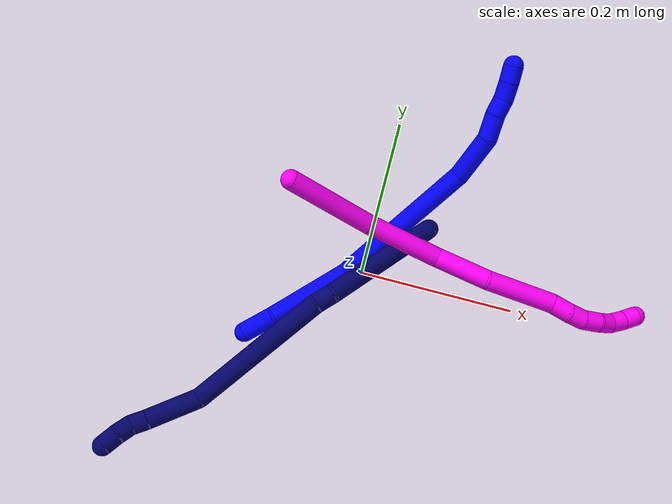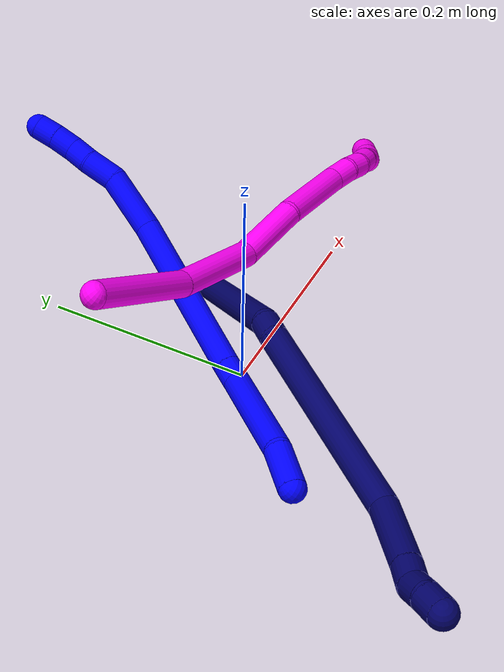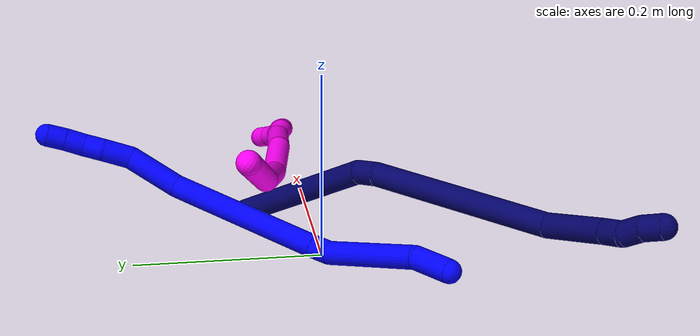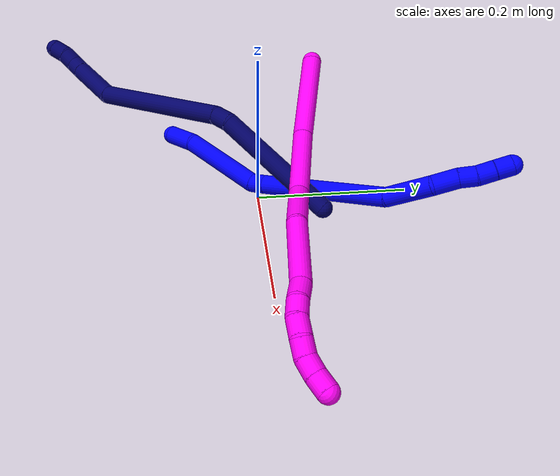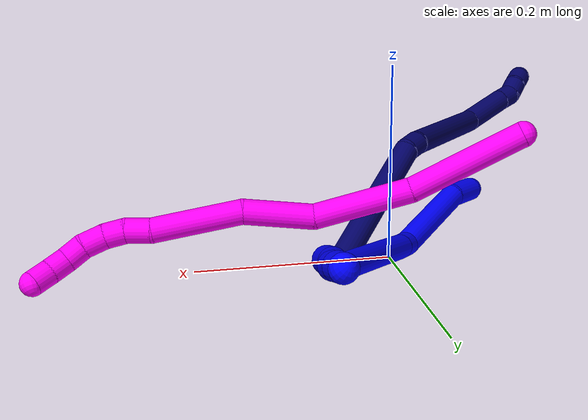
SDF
<sdf version="1.7">
 <world name="default">
  <model name="photoneo_s_sensor">
   <static>1</static>
   <pose>0 0 2 1.57079 1.57079 3.14159</pose>
   <link name="link">
    <inertial><mass>0.1</mass></inertial>
    <sensor name="sensor" type="depth">
     <update_rate>30</update_rate>
     <camera>
      <horizontal_fov>1.22</horizontal_fov>
      <image><width>1920</width><height>1200</height><format>B8G8R8</format></image>
      <clip><near>0.1</near><far>4</far></clip>
      <depth_camera><output>points</output></depth_camera>
     </camera>
     <plugin name="camera_plugin" filename="libgazebo_ros_depth_camera.so">
      <baseline>0.2</baseline>
      <alwaysOn>1</alwaysOn>
      <updateRate>0.0</updateRate>
      <cameraName>camera_ir</cameraName>
      <imageTopicName>/camera/color/image_raw</imageTopicName>
      <cameraInfoTopicName>/camera/color/camera_info</cameraInfoTopicName>
      <depthImageTopicName>/camera/depth/image_raw</depthImageTopicName>
      <depthImageCameraInfoTopicName>/camera/depth/camera_info</depthImageCameraInfoTopicName>
      <pointCloudTopicName>/camera/depth/points</pointCloudTopicName>
      <frameName>fr_optical</frameName>
      <pointCloudCutoff>0.1</pointCloudCutoff>
      <pointCloudCutoffMax>2.0</pointCloudCutoffMax>
      <distortionK1>0</distortionK1>
      <distortionK2>0</distortionK2>
      <distortionK3>0</distortionK3>
      <distortionT1>0</distortionT1>
      <distortionT2>0</distortionT2>
      <CxPrime>0</CxPrime>
      <Cx>0</Cx>
      <Cy>0</Cy>
      <focalLength>0</focalLength>
      <hackBaseline>0</hackBaseline>
     </plugin>
    </sensor>
   </link>
  </model>
  <model name="bin">
   <static>1</static>
   <link name="bottom">
    <collision name="collision-bottom">
     <pose>0 0 -0.01 0 -0 0</pose>
     <geometry><box><size>0.8 0.6 0.02</size></box></geometry>
     <surface>
      <friction><ode><mu>100</mu><mu2>100</mu2></ode></friction>
      <contact><collide_bitmask>65535</collide_bitmask></contact>
     </surface>
    </collision>
   </link>
   <link name="west_wall">
    <collision name="collision-west_wall">
     <pose>-0.41 0 0.1 0 -0 0</pose>
     <geometry><box><size>0.02 0.6 0.2</size></box></geometry>
     <surface>
      <friction><ode><mu>100</mu><mu2>100</mu2></ode></friction>
      <contact><collide_bitmask>65535</collide_bitmask></contact>
     </surface>
    </collision>
   </link>
   <link name="east_wall">
    <collision name="collision-east_wall">
     <pose>0.41 0 0.1 0 -0 0</pose>
     <geometry><box><size>0.02 0.6 0.2</size></box></geometry>
     <surface>
      <friction><ode><mu>100</mu><mu2>100</mu2></ode></friction>
      <contact><collide_bitmask>65535</collide_bitmask></contact>
     </surface>
    </collision>
   </link>
   <link name="south_wall">
    <collision name="collision-south_wall">
     <pose>0 -0.31 0.1 0 -0 0</pose>
     <geometry><box><size>0.8 0.02 0.2</size></box></geometry>
     <surface>
      <friction><ode><mu>100</mu><mu2>100</mu2></ode></friction>
      <contact><collide_bitmask>65535</collide_bitmask></contact>
     </surface>
    </collision>
   </link>
   <link name="north_wall">
    <collision name="collision-north_wall">
     <pose>0 0.31 0.1 0 -0 0</pose>
     <geometry><box><size>0.8 0.02 0.2</size></box></geometry>
     <surface>
      <friction><ode><mu>100</mu><mu2>100</mu2></ode></friction>
      <contact><collide_bitmask>65535</collide_bitmask></contact>
     </surface>
    </collision>
   </link>
  </model>
  <model name="1">
   <static>0</static>
   <link name="1">
    <collision name="collision-cylinder-e_1_1_4">
     <pose>0.019754 0.003025 0.005488 -0.503782 1.2636 -0.372346</pose>
     <geometry><cylinder><radius>0.0125</radius><length>0.041448</length></cylinder></geometry>
     <surface>
      <friction><ode><mu>1.16</mu><mu2>1.16</mu2><slip1>0</slip1><slip2>0</slip2></ode></friction>
      <contact><ode><kp>1e+06</kp><kd>1</kd><max_vel>0</max_vel><min_depth>0.001</min_depth></ode></contact>
     </surface>
    </collision>
    <visual name="visual-cylinder-e_1_1_4">
     <pose>0.019754 0.003025 0.005488 -0.503782 1.2636 -0.372346</pose>
     <geometry><cylinder><radius>0.0125</radius><length>0.041448</length></cylinder></geometry>
     <material><ambient>0 0 1 1</ambient></material>
    </visual>
    <collision name="collision-cylinder-e_2_4_5">
     <pose>0.089437 0.027794 0.017007 -1.30024 1.14635 -0.91252</pose>
     <geometry><cylinder><radius>0.0125</radius><length>0.109583</length></cylinder></geometry>
     <surface>
      <friction><ode><mu>1.16</mu><mu2>1.16</mu2><slip1>0</slip1><slip2>0</slip2></ode></friction>
      <contact><ode><kp>1e+06</kp><kd>1</kd><max_vel>0</max_vel><min_depth>0.001</min_depth></ode></contact>
     </surface>
    </collision>
    <visual name="visual-cylinder-e_2_4_5">
     <pose>0.089437 0.027794 0.017007 -1.30024 1.14635 -0.91252</pose>
     <geometry><cylinder><radius>0.0125</radius><length>0.109583</length></cylinder></geometry>
     <material><ambient>0 0 1 1</ambient></material>
    </visual>
    <collision name="collision-cylinder-e_3_5_6">
     <pose>0.148236 0.051377 0.027967 -0.357334 1.03531 -0.204957</pose>
     <geometry><cylinder><radius>0.0125</radius><length>0.020624</length></cylinder></geometry>
     <surface>
      <friction><ode><mu>1.16</mu><mu2>1.16</mu2><slip1>0</slip1><slip2>0</slip2></ode></friction>
      <contact><ode><kp>1e+06</kp><kd>1</kd><max_vel>0</max_vel><min_depth>0.001</min_depth></ode></contact>
     </surface>
    </collision>
    <visual name="visual-cylinder-e_3_5_6">
     <pose>0.148236 0.051377 0.027967 -0.357334 1.03531 -0.204957</pose>
     <geometry><cylinder><radius>0.0125</radius><length>0.020624</length></cylinder></geometry>
     <material><ambient>0 0 1 1</ambient></material>
    </visual>
    <collision name="collision-cylinder-e_4_6_7">
     <pose>0.231754 0.065924 0.074902 -0.293728 1.03933 -0.168864</pose>
     <geometry><cylinder><radius>0.0125</radius><length>0.173188</length></cylinder></geometry>
     <surface>
      <friction><ode><mu>1.16</mu><mu2>1.16</mu2><slip1>0</slip1><slip2>0</slip2></ode></friction>
      <contact><ode><kp>1e+06</kp><kd>1</kd><max_vel>0</max_vel><min_depth>0.001</min_depth></ode></contact>
     </surface>
    </collision>
    <visual name="visual-cylinder-e_4_6_7">
     <pose>0.231754 0.065924 0.074902 -0.293728 1.03933 -0.168864</pose>
     <geometry><cylinder><radius>0.0125</radius><length>0.173188</length></cylinder></geometry>
     <material><ambient>0 0 1 1</ambient></material>
    </visual>
    <collision name="collision-cylinder-e_5_7_8">
     <pose>0.327058 0.078996 0.138964 -0.016615 0.752531 -0.006564</pose>
     <geometry><cylinder><radius>0.0125</radius><length>0.060438</length></cylinder></geometry>
     <surface>
      <friction><ode><mu>1.16</mu><mu2>1.16</mu2><slip1>0</slip1><slip2>0</slip2></ode></friction>
      <contact><ode><kp>1e+06</kp><kd>1</kd><max_vel>0</max_vel><min_depth>0.001</min_depth></ode></contact>
     </surface>
    </collision>
    <visual name="visual-cylinder-e_5_7_8">
     <pose>0.327058 0.078996 0.138964 -0.016615 0.752531 -0.006564</pose>
     <geometry><cylinder><radius>0.0125</radius><length>0.060438</length></cylinder></geometry>
     <material><ambient>0 0 1 1</ambient></material>
    </visual>
    <collision name="collision-cylinder-e_6_8_9">
     <pose>0.355109 0.083847 0.174087 -0.330587 0.491545 -0.08364</pose>
     <geometry><cylinder><radius>0.0125</radius><length>0.031343</length></cylinder></geometry>
     <surface>
      <friction><ode><mu>1.16</mu><mu2>1.16</mu2><slip1>0</slip1><slip2>0</slip2></ode></friction>
      <contact><ode><kp>1e+06</kp><kd>1</kd><max_vel>0</max_vel><min_depth>0.001</min_depth></ode></contact>
     </surface>
    </collision>
    <visual name="visual-cylinder-e_6_8_9">
     <pose>0.355109 0.083847 0.174087 -0.330587 0.491545 -0.08364</pose>
     <geometry><cylinder><radius>0.0125</radius><length>0.031343</length></cylinder></geometry>
     <material><ambient>0 0 1 1</ambient></material>
    </visual>
    <collision name="collision-cylinder-e_7_9_10">
     <pose>0.369153 0.09164 0.194892 -0.40403 0.668602 -0.142036</pose>
     <geometry><cylinder><radius>0.0125</radius><length>0.021446</length></cylinder></geometry>
     <surface>
      <friction><ode><mu>1.16</mu><mu2>1.16</mu2><slip1>0</slip1><slip2>0</slip2></ode></friction>
      <contact><ode><kp>1e+06</kp><kd>1</kd><max_vel>0</max_vel><min_depth>0.001</min_depth></ode></contact>
     </surface>
    </collision>
    <visual name="visual-cylinder-e_7_9_10">
     <pose>0.369153 0.09164 0.194892 -0.40403 0.668602 -0.142036</pose>
     <geometry><cylinder><radius>0.0125</radius><length>0.021446</length></cylinder></geometry>
     <material><ambient>0 0 1 1</ambient></material>
    </visual>
    <collision name="collision-cylinder-e_8_10_11">
     <pose>0.38071 0.097789 0.211689 -0.303925 0.477233 -0.07447</pose>
     <geometry><cylinder><radius>0.0125</radius><length>0.021379</length></cylinder></geometry>
     <surface>
      <friction><ode><mu>1.16</mu><mu2>1.16</mu2><slip1>0</slip1><slip2>0</slip2></ode></friction>
      <contact><ode><kp>1e+06</kp><kd>1</kd><max_vel>0</max_vel><min_depth>0.001</min_depth></ode></contact>
     </surface>
    </collision>
    <visual name="visual-cylinder-e_8_10_11">
     <pose>0.38071 0.097789 0.211689 -0.303925 0.477233 -0.07447</pose>
     <geometry><cylinder><radius>0.0125</radius><length>0.021379</length></cylinder></geometry>
     <material><ambient>0 0 1 1</ambient></material>
    </visual>
    <collision name="collision-cylinder-e_9_11_2">
     <pose>0.389957 0.103954 0.229451 -0.364834 0.435678 -0.081619</pose>
     <geometry><cylinder><radius>0.0125</radius><length>0.02055</length></cylinder></geometry>
     <surface>
      <friction><ode><mu>1.16</mu><mu2>1.16</mu2><slip1>0</slip1><slip2>0</slip2></ode></friction>
      <contact><ode><kp>1e+06</kp><kd>1</kd><max_vel>0</max_vel><min_depth>0.001</min_depth></ode></contact>
     </surface>
    </collision>
    <visual name="visual-cylinder-e_9_11_2">
     <pose>0.389957 0.103954 0.229451 -0.364834 0.435678 -0.081619</pose>
     <geometry><cylinder><radius>0.0125</radius><length>0.02055</length></cylinder></geometry>
     <material><ambient>0 0 1 1</ambient></material>
    </visual>
    <collision name="collision-sphere-2">
     <pose>0.394293 0.107278 0.238153 0 -0 0</pose>
     <geometry><sphere><radius>0.0125</radius></sphere></geometry>
     <surface>
      <friction><ode><mu>1.16</mu><mu2>1.16</mu2><slip1>0</slip1><slip2>0</slip2></ode></friction>
      <contact><ode><kp>1e+06</kp><kd>1</kd><max_vel>0</max_vel><min_depth>0.001</min_depth></ode></contact>
     </surface>
    </collision>
    <visual name="visual-sphere-2">
     <pose>0.394293 0.107278 0.238153 0 -0 0</pose>
     <geometry><sphere><radius>0.0125</radius></sphere></geometry>
     <material><ambient>0 0 1 1</ambient></material>
    </visual>
    <collision name="collision-sphere-11">
     <pose>0.38562 0.100631 0.220749 0 -0 0</pose>
     <geometry><sphere><radius>0.0125</radius></sphere></geometry>
     <surface>
      <friction><ode><mu>1.16</mu><mu2>1.16</mu2><slip1>0</slip1><slip2>0</slip2></ode></friction>
      <contact><ode><kp>1e+06</kp><kd>1</kd><max_vel>0</max_vel><min_depth>0.001</min_depth></ode></contact>
     </surface>
    </collision>
    <visual name="visual-sphere-11">
     <pose>0.38562 0.100631 0.220749 0 -0 0</pose>
     <geometry><sphere><radius>0.0125</radius></sphere></geometry>
     <material><ambient>0 0 1 1</ambient></material>
    </visual>
    <collision name="collision-sphere-10">
     <pose>0.3758 0.094947 0.202629 0 -0 0</pose>
     <geometry><sphere><radius>0.0125</radius></sphere></geometry>
     <surface>
      <friction><ode><mu>1.16</mu><mu2>1.16</mu2><slip1>0</slip1><slip2>0</slip2></ode></friction>
      <contact><ode><kp>1e+06</kp><kd>1</kd><max_vel>0</max_vel><min_depth>0.001</min_depth></ode></contact>
     </surface>
    </collision>
    <visual name="visual-sphere-10">
     <pose>0.3758 0.094947 0.202629 0 -0 0</pose>
     <geometry><sphere><radius>0.0125</radius></sphere></geometry>
     <material><ambient>0 0 1 1</ambient></material>
    </visual>
    <collision name="collision-sphere-9">
     <pose>0.362506 0.088332 0.187155 0 -0 0</pose>
     <geometry><sphere><radius>0.0125</radius></sphere></geometry>
     <surface>
      <friction><ode><mu>1.16</mu><mu2>1.16</mu2><slip1>0</slip1><slip2>0</slip2></ode></friction>
      <contact><ode><kp>1e+06</kp><kd>1</kd><max_vel>0</max_vel><min_depth>0.001</min_depth></ode></contact>
     </surface>
    </collision>
    <visual name="visual-sphere-9">
     <pose>0.362506 0.088332 0.187155 0 -0 0</pose>
     <geometry><sphere><radius>0.0125</radius></sphere></geometry>
     <material><ambient>0 0 1 1</ambient></material>
    </visual>
    <collision name="collision-sphere-4">
     <pose>0.039508 0.00605 0.010976 0 -0 0</pose>
     <geometry><sphere><radius>0.0125</radius></sphere></geometry>
     <surface>
      <friction><ode><mu>1.16</mu><mu2>1.16</mu2><slip1>0</slip1><slip2>0</slip2></ode></friction>
      <contact><ode><kp>1e+06</kp><kd>1</kd><max_vel>0</max_vel><min_depth>0.001</min_depth></ode></contact>
     </surface>
    </collision>
    <visual name="visual-sphere-4">
     <pose>0.039508 0.00605 0.010976 0 -0 0</pose>
     <geometry><sphere><radius>0.0125</radius></sphere></geometry>
     <material><ambient>0 0 1 1</ambient></material>
    </visual>
    <collision name="collision-sphere-1">
     <geometry><sphere><radius>0.0125</radius></sphere></geometry>
     <surface>
      <friction><ode><mu>1.16</mu><mu2>1.16</mu2><slip1>0</slip1><slip2>0</slip2></ode></friction>
      <contact><ode><kp>1e+06</kp><kd>1</kd><max_vel>0</max_vel><min_depth>0.001</min_depth></ode></contact>
     </surface>
    </collision>
    <visual name="visual-sphere-1">
     <geometry><sphere><radius>0.0125</radius></sphere></geometry>
     <material><ambient>0 0 1 1</ambient></material>
    </visual>
    <collision name="collision-sphere-8">
     <pose>0.347713 0.079362 0.161019 0 -0 0</pose>
     <geometry><sphere><radius>0.0125</radius></sphere></geometry>
     <surface>
      <friction><ode><mu>1.16</mu><mu2>1.16</mu2><slip1>0</slip1><slip2>0</slip2></ode></friction>
      <contact><ode><kp>1e+06</kp><kd>1</kd><max_vel>0</max_vel><min_depth>0.001</min_depth></ode></contact>
     </surface>
    </collision>
    <visual name="visual-sphere-8">
     <pose>0.347713 0.079362 0.161019 0 -0 0</pose>
     <geometry><sphere><radius>0.0125</radius></sphere></geometry>
     <material><ambient>0 0 1 1</ambient></material>
    </visual>
    <collision name="collision-sphere-5">
     <pose>0.139367 0.049537 0.023038 0 -0 0</pose>
     <geometry><sphere><radius>0.0125</radius></sphere></geometry>
     <surface>
      <friction><ode><mu>1.16</mu><mu2>1.16</mu2><slip1>0</slip1><slip2>0</slip2></ode></friction>
      <contact><ode><kp>1e+06</kp><kd>1</kd><max_vel>0</max_vel><min_depth>0.001</min_depth></ode></contact>
     </surface>
    </collision>
    <visual name="visual-sphere-5">
     <pose>0.139367 0.049537 0.023038 0 -0 0</pose>
     <geometry><sphere><radius>0.0125</radius></sphere></geometry>
     <material><ambient>0 0 1 1</ambient></material>
    </visual>
    <collision name="collision-sphere-6">
     <pose>0.157104 0.053218 0.032897 0 -0 0</pose>
     <geometry><sphere><radius>0.0125</radius></sphere></geometry>
     <surface>
      <friction><ode><mu>1.16</mu><mu2>1.16</mu2><slip1>0</slip1><slip2>0</slip2></ode></friction>
      <contact><ode><kp>1e+06</kp><kd>1</kd><max_vel>0</max_vel><min_depth>0.001</min_depth></ode></contact>
     </surface>
    </collision>
    <visual name="visual-sphere-6">
     <pose>0.157104 0.053218 0.032897 0 -0 0</pose>
     <geometry><sphere><radius>0.0125</radius></sphere></geometry>
     <material><ambient>0 0 1 1</ambient></material>
    </visual>
    <collision name="collision-sphere-7">
     <pose>0.306404 0.078629 0.116908 0 -0 0</pose>
     <geometry><sphere><radius>0.0125</radius></sphere></geometry>
     <surface>
      <friction><ode><mu>1.16</mu><mu2>1.16</mu2><slip1>0</slip1><slip2>0</slip2></ode></friction>
      <contact><ode><kp>1e+06</kp><kd>1</kd><max_vel>0</max_vel><min_depth>0.001</min_depth></ode></contact>
     </surface>
    </collision>
    <visual name="visual-sphere-7">
     <pose>0.306404 0.078629 0.116908 0 -0 0</pose>
     <geometry><sphere><radius>0.0125</radius></sphere></geometry>
     <material><ambient>0 0 1 1</ambient></material>
    </visual>
    <inertial>
     <pose>0.217561 0.058485 0.085832 0 -0 0</pose>
     <mass>0.5</mass>
     <inertia>
      <ixx>0.000228</ixx>
      <ixy>0</ixy>
      <ixz>0</ixz>
      <iyy>0.000501</iyy>
      <iyz>0</iyz>
      <izz>-0.000605</izz>
     </inertia>
    </inertial>
   </link>
   <pose>-0.124781 -0.110402 0.03111 -0.897436 -0.033526 0.450251</pose>
  </model>
  <model name="7">
   <static>0</static>
   <link name="7">
    <collision name="collision-cylinder-e_1_1_4">
     <pose>-0.061381 -0.030285 -0.04548 2.55413 -0.843429 -1.95514</pose>
     <geometry><cylinder><radius>0.0125</radius><length>0.164356</length></cylinder></geometry>
     <surface>
      <friction><ode><mu>1.16</mu><mu2>1.16</mu2><slip1>0</slip1><slip2>0</slip2></ode></friction>
      <contact><ode><kp>1e+06</kp><kd>1</kd><max_vel>0</max_vel><min_depth>0.001</min_depth></ode></contact>
     </surface>
    </collision>
    <visual name="visual-cylinder-e_1_1_4">
     <pose>-0.061381 -0.030285 -0.04548 2.55413 -0.843429 -1.95514</pose>
     <geometry><cylinder><radius>0.0125</radius><length>0.164356</length></cylinder></geometry>
     <material><ambient>0.003922 0 0.403922 1</ambient></material>
    </visual>
    <collision name="collision-cylinder-e_2_4_5">
     <pose>-0.131944 -0.066568 -0.093673 1.99554 -0.948713 -1.34429</pose>
     <geometry><cylinder><radius>0.0125</radius><length>0.022597</length></cylinder></geometry>
     <surface>
      <friction><ode><mu>1.16</mu><mu2>1.16</mu2><slip1>0</slip1><slip2>0</slip2></ode></friction>
      <contact><ode><kp>1e+06</kp><kd>1</kd><max_vel>0</max_vel><min_depth>0.001</min_depth></ode></contact>
     </surface>
    </collision>
    <visual name="visual-cylinder-e_2_4_5">
     <pose>-0.131944 -0.066568 -0.093673 1.99554 -0.948713 -1.34429</pose>
     <geometry><cylinder><radius>0.0125</radius><length>0.022597</length></cylinder></geometry>
     <material><ambient>0.003922 0 0.403922 1</ambient></material>
    </visual>
    <collision name="collision-cylinder-e_3_5_6">
     <pose>-0.222931 -0.115659 -0.096557 1.57475 -1.08597 -1.08947</pose>
     <geometry><cylinder><radius>0.0125</radius><length>0.184922</length></cylinder></geometry>
     <surface>
      <friction><ode><mu>1.16</mu><mu2>1.16</mu2><slip1>0</slip1><slip2>0</slip2></ode></friction>
      <contact><ode><kp>1e+06</kp><kd>1</kd><max_vel>0</max_vel><min_depth>0.001</min_depth></ode></contact>
     </surface>
    </collision>
    <visual name="visual-cylinder-e_3_5_6">
     <pose>-0.222931 -0.115659 -0.096557 1.57475 -1.08597 -1.08947</pose>
     <geometry><cylinder><radius>0.0125</radius><length>0.184922</length></cylinder></geometry>
     <material><ambient>0.003922 0 0.403922 1</ambient></material>
    </visual>
    <collision name="collision-cylinder-e_4_6_7">
     <pose>-0.32807 -0.179862 -0.108232 2.06979 -0.770439 -1.19813</pose>
     <geometry><cylinder><radius>0.0125</radius><length>0.067007</length></cylinder></geometry>
     <surface>
      <friction><ode><mu>1.16</mu><mu2>1.16</mu2><slip1>0</slip1><slip2>0</slip2></ode></friction>
      <contact><ode><kp>1e+06</kp><kd>1</kd><max_vel>0</max_vel><min_depth>0.001</min_depth></ode></contact>
     </surface>
    </collision>
    <visual name="visual-cylinder-e_4_6_7">
     <pose>-0.32807 -0.179862 -0.108232 2.06979 -0.770439 -1.19813</pose>
     <geometry><cylinder><radius>0.0125</radius><length>0.067007</length></cylinder></geometry>
     <material><ambient>0.003922 0 0.403922 1</ambient></material>
    </visual>
    <collision name="collision-cylinder-e_5_7_8">
     <pose>-0.358255 -0.207933 -0.123214 2.03405 -0.721984 -1.09635</pose>
     <geometry><cylinder><radius>0.0125</radius><length>0.020736</length></cylinder></geometry>
     <surface>
      <friction><ode><mu>1.16</mu><mu2>1.16</mu2><slip1>0</slip1><slip2>0</slip2></ode></friction>
      <contact><ode><kp>1e+06</kp><kd>1</kd><max_vel>0</max_vel><min_depth>0.001</min_depth></ode></contact>
     </surface>
    </collision>
    <visual name="visual-cylinder-e_5_7_8">
     <pose>-0.358255 -0.207933 -0.123214 2.03405 -0.721984 -1.09635</pose>
     <geometry><cylinder><radius>0.0125</radius><length>0.020736</length></cylinder></geometry>
     <material><ambient>0.003922 0 0.403922 1</ambient></material>
    </visual>
    <collision name="collision-cylinder-e_6_8_9">
     <pose>-0.372495 -0.218477 -0.132406 2.58154 -0.83087 -1.98609</pose>
     <geometry><cylinder><radius>0.0125</radius><length>0.020009</length></cylinder></geometry>
     <surface>
      <friction><ode><mu>1.16</mu><mu2>1.16</mu2><slip1>0</slip1><slip2>0</slip2></ode></friction>
      <contact><ode><kp>1e+06</kp><kd>1</kd><max_vel>0</max_vel><min_depth>0.001</min_depth></ode></contact>
     </surface>
    </collision>
    <visual name="visual-cylinder-e_6_8_9">
     <pose>-0.372495 -0.218477 -0.132406 2.58154 -0.83087 -1.98609</pose>
     <geometry><cylinder><radius>0.0125</radius><length>0.020009</length></cylinder></geometry>
     <material><ambient>0.003922 0 0.403922 1</ambient></material>
    </visual>
    <collision name="collision-cylinder-e_7_9_2">
     <pose>-0.388583 -0.225846 -0.141831 2.34604 -1.02364 -1.85718</pose>
     <geometry><cylinder><radius>0.0125</radius><length>0.020374</length></cylinder></geometry>
     <surface>
      <friction><ode><mu>1.16</mu><mu2>1.16</mu2><slip1>0</slip1><slip2>0</slip2></ode></friction>
      <contact><ode><kp>1e+06</kp><kd>1</kd><max_vel>0</max_vel><min_depth>0.001</min_depth></ode></contact>
     </surface>
    </collision>
    <visual name="visual-cylinder-e_7_9_2">
     <pose>-0.388583 -0.225846 -0.141831 2.34604 -1.02364 -1.85718</pose>
     <geometry><cylinder><radius>0.0125</radius><length>0.020374</length></cylinder></geometry>
     <material><ambient>0.003922 0 0.403922 1</ambient></material>
    </visual>
    <collision name="collision-sphere-2">
     <pose>-0.397283 -0.229632 -0.14554 0 -0 0</pose>
     <geometry><sphere><radius>0.0125</radius></sphere></geometry>
     <surface>
      <friction><ode><mu>1.16</mu><mu2>1.16</mu2><slip1>0</slip1><slip2>0</slip2></ode></friction>
      <contact><ode><kp>1e+06</kp><kd>1</kd><max_vel>0</max_vel><min_depth>0.001</min_depth></ode></contact>
     </surface>
    </collision>
    <visual name="visual-sphere-2">
     <pose>-0.397283 -0.229632 -0.14554 0 -0 0</pose>
     <geometry><sphere><radius>0.0125</radius></sphere></geometry>
     <material><ambient>0.003922 0 0.403922 1</ambient></material>
    </visual>
    <collision name="collision-sphere-9">
     <pose>-0.379884 -0.222061 -0.138121 0 -0 0</pose>
     <geometry><sphere><radius>0.0125</radius></sphere></geometry>
     <surface>
      <friction><ode><mu>1.16</mu><mu2>1.16</mu2><slip1>0</slip1><slip2>0</slip2></ode></friction>
      <contact><ode><kp>1e+06</kp><kd>1</kd><max_vel>0</max_vel><min_depth>0.001</min_depth></ode></contact>
     </surface>
    </collision>
    <visual name="visual-sphere-9">
     <pose>-0.379884 -0.222061 -0.138121 0 -0 0</pose>
     <geometry><sphere><radius>0.0125</radius></sphere></geometry>
     <material><ambient>0.003922 0 0.403922 1</ambient></material>
    </visual>
    <collision name="collision-sphere-4">
     <pose>-0.122762 -0.060569 -0.09096 0 -0 0</pose>
     <geometry><sphere><radius>0.0125</radius></sphere></geometry>
     <surface>
      <friction><ode><mu>1.16</mu><mu2>1.16</mu2><slip1>0</slip1><slip2>0</slip2></ode></friction>
      <contact><ode><kp>1e+06</kp><kd>1</kd><max_vel>0</max_vel><min_depth>0.001</min_depth></ode></contact>
     </surface>
    </collision>
    <visual name="visual-sphere-4">
     <pose>-0.122762 -0.060569 -0.09096 0 -0 0</pose>
     <geometry><sphere><radius>0.0125</radius></sphere></geometry>
     <material><ambient>0.003922 0 0.403922 1</ambient></material>
    </visual>
    <collision name="collision-sphere-1">
     <geometry><sphere><radius>0.0125</radius></sphere></geometry>
     <surface>
      <friction><ode><mu>1.16</mu><mu2>1.16</mu2><slip1>0</slip1><slip2>0</slip2></ode></friction>
      <contact><ode><kp>1e+06</kp><kd>1</kd><max_vel>0</max_vel><min_depth>0.001</min_depth></ode></contact>
     </surface>
    </collision>
    <visual name="visual-sphere-1">
     <geometry><sphere><radius>0.0125</radius></sphere></geometry>
     <material><ambient>0.003922 0 0.403922 1</ambient></material>
    </visual>
    <collision name="collision-sphere-8">
     <pose>-0.365106 -0.214894 -0.126691 0 -0 0</pose>
     <geometry><sphere><radius>0.0125</radius></sphere></geometry>
     <surface>
      <friction><ode><mu>1.16</mu><mu2>1.16</mu2><slip1>0</slip1><slip2>0</slip2></ode></friction>
      <contact><ode><kp>1e+06</kp><kd>1</kd><max_vel>0</max_vel><min_depth>0.001</min_depth></ode></contact>
     </surface>
    </collision>
    <visual name="visual-sphere-8">
     <pose>-0.365106 -0.214894 -0.126691 0 -0 0</pose>
     <geometry><sphere><radius>0.0125</radius></sphere></geometry>
     <material><ambient>0.003922 0 0.403922 1</ambient></material>
    </visual>
    <collision name="collision-sphere-5">
     <pose>-0.141126 -0.072567 -0.096386 0 -0 0</pose>
     <geometry><sphere><radius>0.0125</radius></sphere></geometry>
     <surface>
      <friction><ode><mu>1.16</mu><mu2>1.16</mu2><slip1>0</slip1><slip2>0</slip2></ode></friction>
      <contact><ode><kp>1e+06</kp><kd>1</kd><max_vel>0</max_vel><min_depth>0.001</min_depth></ode></contact>
     </surface>
    </collision>
    <visual name="visual-sphere-5">
     <pose>-0.141126 -0.072567 -0.096386 0 -0 0</pose>
     <geometry><sphere><radius>0.0125</radius></sphere></geometry>
     <material><ambient>0.003922 0 0.403922 1</ambient></material>
    </visual>
    <collision name="collision-sphere-6">
     <pose>-0.304736 -0.158751 -0.096727 0 -0 0</pose>
     <geometry><sphere><radius>0.0125</radius></sphere></geometry>
     <surface>
      <friction><ode><mu>1.16</mu><mu2>1.16</mu2><slip1>0</slip1><slip2>0</slip2></ode></friction>
      <contact><ode><kp>1e+06</kp><kd>1</kd><max_vel>0</max_vel><min_depth>0.001</min_depth></ode></contact>
     </surface>
    </collision>
    <visual name="visual-sphere-6">
     <pose>-0.304736 -0.158751 -0.096727 0 -0 0</pose>
     <geometry><sphere><radius>0.0125</radius></sphere></geometry>
     <material><ambient>0.003922 0 0.403922 1</ambient></material>
    </visual>
    <collision name="collision-sphere-7">
     <pose>-0.351403 -0.200972 -0.119737 0 -0 0</pose>
     <geometry><sphere><radius>0.0125</radius></sphere></geometry>
     <surface>
      <friction><ode><mu>1.16</mu><mu2>1.16</mu2><slip1>0</slip1><slip2>0</slip2></ode></friction>
      <contact><ode><kp>1e+06</kp><kd>1</kd><max_vel>0</max_vel><min_depth>0.001</min_depth></ode></contact>
     </surface>
    </collision>
    <visual name="visual-sphere-7">
     <pose>-0.351403 -0.200972 -0.119737 0 -0 0</pose>
     <geometry><sphere><radius>0.0125</radius></sphere></geometry>
     <material><ambient>0.003922 0 0.403922 1</ambient></material>
    </visual>
    <inertial>
     <pose>-0.198153 -0.106412 -0.085587 0 -0 0</pose>
     <mass>0.5</mass>
     <inertia>
      <ixx>-0.000477</ixx>
      <ixy>0</ixy>
      <ixz>0</ixz>
      <iyy>0.000202</iyy>
      <iyz>0</iyz>
      <izz>0.001175</izz>
     </inertia>
    </inertial>
   </link>
   <pose>0.070032 0.075382 0.027737 2.94425 -0.016539 1.40892</pose>
  </model>
  <model name="10">
   <static>0</static>
   <link name="10">
    <collision name="collision-cylinder-e_1_1_4">
     <pose>0.053761 -0.023851 -0.003047 1.69786 1.15022 1.26933</pose>
     <geometry><cylinder><radius>0.0125</radius><length>0.117786</length></cylinder></geometry>
     <surface>
      <friction><ode><mu>1.16</mu><mu2>1.16</mu2><slip1>0</slip1><slip2>0</slip2></ode></friction>
      <contact><ode><kp>1e+06</kp><kd>1</kd><max_vel>0</max_vel><min_depth>0.001</min_depth></ode></contact>
     </surface>
    </collision>
    <visual name="visual-cylinder-e_1_1_4">
     <pose>0.053761 -0.023851 -0.003047 1.69786 1.15022 1.26933</pose>
     <geometry><cylinder><radius>0.0125</radius><length>0.117786</length></cylinder></geometry>
     <material><ambient>1 0 0.964706 1</ambient></material>
    </visual>
    <collision name="collision-cylinder-e_2_4_5">
     <pose>0.154086 -0.060017 -0.000731 1.16002 1.28998 0.91592</pose>
     <geometry><cylinder><radius>0.0125</radius><length>0.096926</length></cylinder></geometry>
     <surface>
      <friction><ode><mu>1.16</mu><mu2>1.16</mu2><slip1>0</slip1><slip2>0</slip2></ode></friction>
      <contact><ode><kp>1e+06</kp><kd>1</kd><max_vel>0</max_vel><min_depth>0.001</min_depth></ode></contact>
     </surface>
    </collision>
    <visual name="visual-cylinder-e_2_4_5">
     <pose>0.154086 -0.060017 -0.000731 1.16002 1.28998 0.91592</pose>
     <geometry><cylinder><radius>0.0125</radius><length>0.096926</length></cylinder></geometry>
     <material><ambient>1 0 0.964706 1</ambient></material>
    </visual>
    <collision name="collision-cylinder-e_3_5_6">
     <pose>0.232206 -0.073671 0.018321 0.097572 1.15975 0.063938</pose>
     <geometry><cylinder><radius>0.0125</radius><length>0.068845</length></cylinder></geometry>
     <surface>
      <friction><ode><mu>1.16</mu><mu2>1.16</mu2><slip1>0</slip1><slip2>0</slip2></ode></friction>
      <contact><ode><kp>1e+06</kp><kd>1</kd><max_vel>0</max_vel><min_depth>0.001</min_depth></ode></contact>
     </surface>
    </collision>
    <visual name="visual-cylinder-e_3_5_6">
     <pose>0.232206 -0.073671 0.018321 0.097572 1.15975 0.063938</pose>
     <geometry><cylinder><radius>0.0125</radius><length>0.068845</length></cylinder></geometry>
     <material><ambient>1 0 0.964706 1</ambient></material>
    </visual>
    <collision name="collision-cylinder-e_4_6_7">
     <pose>0.307307 -0.08027 0.038287 0.697415 1.38491 0.585788</pose>
     <geometry><cylinder><radius>0.0125</radius><length>0.088617</length></cylinder></geometry>
     <surface>
      <friction><ode><mu>1.16</mu><mu2>1.16</mu2><slip1>0</slip1><slip2>0</slip2></ode></friction>
      <contact><ode><kp>1e+06</kp><kd>1</kd><max_vel>0</max_vel><min_depth>0.001</min_depth></ode></contact>
     </surface>
    </collision>
    <visual name="visual-cylinder-e_4_6_7">
     <pose>0.307307 -0.08027 0.038287 0.697415 1.38491 0.585788</pose>
     <geometry><cylinder><radius>0.0125</radius><length>0.088617</length></cylinder></geometry>
     <material><ambient>1 0 0.964706 1</ambient></material>
    </visual>
    <collision name="collision-cylinder-e_5_7_8">
     <pose>0.36201 -0.087707 0.048955 0.460518 1.15686 0.303756</pose>
     <geometry><cylinder><radius>0.0125</radius><length>0.024374</length></cylinder></geometry>
     <surface>
      <friction><ode><mu>1.16</mu><mu2>1.16</mu2><slip1>0</slip1><slip2>0</slip2></ode></friction>
      <contact><ode><kp>1e+06</kp><kd>1</kd><max_vel>0</max_vel><min_depth>0.001</min_depth></ode></contact>
     </surface>
    </collision>
    <visual name="visual-cylinder-e_5_7_8">
     <pose>0.36201 -0.087707 0.048955 0.460518 1.15686 0.303756</pose>
     <geometry><cylinder><radius>0.0125</radius><length>0.024374</length></cylinder></geometry>
     <material><ambient>1 0 0.964706 1</ambient></material>
    </visual>
    <collision name="collision-cylinder-e_6_8_9">
     <pose>0.383136 -0.092423 0.05461 1.10879 1.29378 0.87489</pose>
     <geometry><cylinder><radius>0.0125</radius><length>0.020727</length></cylinder></geometry>
     <surface>
      <friction><ode><mu>1.16</mu><mu2>1.16</mu2><slip1>0</slip1><slip2>0</slip2></ode></friction>
      <contact><ode><kp>1e+06</kp><kd>1</kd><max_vel>0</max_vel><min_depth>0.001</min_depth></ode></contact>
     </surface>
    </collision>
    <visual name="visual-cylinder-e_6_8_9">
     <pose>0.383136 -0.092423 0.05461 1.10879 1.29378 0.87489</pose>
     <geometry><cylinder><radius>0.0125</radius><length>0.020727</length></cylinder></geometry>
     <material><ambient>1 0 0.964706 1</ambient></material>
    </visual>
    <collision name="collision-cylinder-e_7_9_10">
     <pose>0.404343 -0.09614 0.054707 2.35033 1.42421 2.24031</pose>
     <geometry><cylinder><radius>0.0125</radius><length>0.02272</length></cylinder></geometry>
     <surface>
      <friction><ode><mu>1.16</mu><mu2>1.16</mu2><slip1>0</slip1><slip2>0</slip2></ode></friction>
      <contact><ode><kp>1e+06</kp><kd>1</kd><max_vel>0</max_vel><min_depth>0.001</min_depth></ode></contact>
     </surface>
    </collision>
    <visual name="visual-cylinder-e_7_9_10">
     <pose>0.404343 -0.09614 0.054707 2.35033 1.42421 2.24031</pose>
     <geometry><cylinder><radius>0.0125</radius><length>0.02272</length></cylinder></geometry>
     <material><ambient>1 0 0.964706 1</ambient></material>
    </visual>
    <collision name="collision-cylinder-e_8_10_11">
     <pose>0.424832 -0.099202 0.050239 2.62339 1.18108 2.3885</pose>
     <geometry><cylinder><radius>0.0125</radius><length>0.020002</length></cylinder></geometry>
     <surface>
      <friction><ode><mu>1.16</mu><mu2>1.16</mu2><slip1>0</slip1><slip2>0</slip2></ode></friction>
      <contact><ode><kp>1e+06</kp><kd>1</kd><max_vel>0</max_vel><min_depth>0.001</min_depth></ode></contact>
     </surface>
    </collision>
    <visual name="visual-cylinder-e_8_10_11">
     <pose>0.424832 -0.099202 0.050239 2.62339 1.18108 2.3885</pose>
     <geometry><cylinder><radius>0.0125</radius><length>0.020002</length></cylinder></geometry>
     <material><ambient>1 0 0.964706 1</ambient></material>
    </visual>
    <collision name="collision-cylinder-e_9_11_12">
     <pose>0.443368 -0.099772 0.043463 -2.78054 1.19021 -2.61491</pose>
     <geometry><cylinder><radius>0.0125</radius><length>0.02</length></cylinder></geometry>
     <surface>
      <friction><ode><mu>1.16</mu><mu2>1.16</mu2><slip1>0</slip1><slip2>0</slip2></ode></friction>
      <contact><ode><kp>1e+06</kp><kd>1</kd><max_vel>0</max_vel><min_depth>0.001</min_depth></ode></contact>
     </surface>
    </collision>
    <visual name="visual-cylinder-e_9_11_12">
     <pose>0.443368 -0.099772 0.043463 -2.78054 1.19021 -2.61491</pose>
     <geometry><cylinder><radius>0.0125</radius><length>0.02</length></cylinder></geometry>
     <material><ambient>1 0 0.964706 1</ambient></material>
    </visual>
    <collision name="collision-cylinder-e_10_12_2">
     <pose>0.461701 -0.095995 0.036516 -2.52431 1.13098 -2.21047</pose>
     <geometry><cylinder><radius>0.0125</radius><length>0.020002</length></cylinder></geometry>
     <surface>
      <friction><ode><mu>1.16</mu><mu2>1.16</mu2><slip1>0</slip1><slip2>0</slip2></ode></friction>
      <contact><ode><kp>1e+06</kp><kd>1</kd><max_vel>0</max_vel><min_depth>0.001</min_depth></ode></contact>
     </surface>
    </collision>
    <visual name="visual-cylinder-e_10_12_2">
     <pose>0.461701 -0.095995 0.036516 -2.52431 1.13098 -2.21047</pose>
     <geometry><cylinder><radius>0.0125</radius><length>0.020002</length></cylinder></geometry>
     <material><ambient>1 0 0.964706 1</ambient></material>
    </visual>
    <collision name="collision-sphere-2">
     <pose>0.470751 -0.093531 0.033044 0 -0 0</pose>
     <geometry><sphere><radius>0.0125</radius></sphere></geometry>
     <surface>
      <friction><ode><mu>1.16</mu><mu2>1.16</mu2><slip1>0</slip1><slip2>0</slip2></ode></friction>
      <contact><ode><kp>1e+06</kp><kd>1</kd><max_vel>0</max_vel><min_depth>0.001</min_depth></ode></contact>
     </surface>
    </collision>
    <visual name="visual-sphere-2">
     <pose>0.470751 -0.093531 0.033044 0 -0 0</pose>
     <geometry><sphere><radius>0.0125</radius></sphere></geometry>
     <material><ambient>1 0 0.964706 1</ambient></material>
    </visual>
    <collision name="collision-sphere-12">
     <pose>0.452652 -0.09846 0.039988 0 -0 0</pose>
     <geometry><sphere><radius>0.0125</radius></sphere></geometry>
     <surface>
      <friction><ode><mu>1.16</mu><mu2>1.16</mu2><slip1>0</slip1><slip2>0</slip2></ode></friction>
      <contact><ode><kp>1e+06</kp><kd>1</kd><max_vel>0</max_vel><min_depth>0.001</min_depth></ode></contact>
     </surface>
    </collision>
    <visual name="visual-sphere-12">
     <pose>0.452652 -0.09846 0.039988 0 -0 0</pose>
     <geometry><sphere><radius>0.0125</radius></sphere></geometry>
     <material><ambient>1 0 0.964706 1</ambient></material>
    </visual>
    <collision name="collision-sphere-11">
     <pose>0.434083 -0.101084 0.046938 0 -0 0</pose>
     <geometry><sphere><radius>0.0125</radius></sphere></geometry>
     <surface>
      <friction><ode><mu>1.16</mu><mu2>1.16</mu2><slip1>0</slip1><slip2>0</slip2></ode></friction>
      <contact><ode><kp>1e+06</kp><kd>1</kd><max_vel>0</max_vel><min_depth>0.001</min_depth></ode></contact>
     </surface>
    </collision>
    <visual name="visual-sphere-11">
     <pose>0.434083 -0.101084 0.046938 0 -0 0</pose>
     <geometry><sphere><radius>0.0125</radius></sphere></geometry>
     <material><ambient>1 0 0.964706 1</ambient></material>
    </visual>
    <collision name="collision-sphere-10">
     <pose>0.415581 -0.09732 0.05354 0 -0 0</pose>
     <geometry><sphere><radius>0.0125</radius></sphere></geometry>
     <surface>
      <friction><ode><mu>1.16</mu><mu2>1.16</mu2><slip1>0</slip1><slip2>0</slip2></ode></friction>
      <contact><ode><kp>1e+06</kp><kd>1</kd><max_vel>0</max_vel><min_depth>0.001</min_depth></ode></contact>
     </surface>
    </collision>
    <visual name="visual-sphere-10">
     <pose>0.415581 -0.09732 0.05354 0 -0 0</pose>
     <geometry><sphere><radius>0.0125</radius></sphere></geometry>
     <material><ambient>1 0 0.964706 1</ambient></material>
    </visual>
    <collision name="collision-sphere-9">
     <pose>0.393105 -0.09496 0.055873 0 -0 0</pose>
     <geometry><sphere><radius>0.0125</radius></sphere></geometry>
     <surface>
      <friction><ode><mu>1.16</mu><mu2>1.16</mu2><slip1>0</slip1><slip2>0</slip2></ode></friction>
      <contact><ode><kp>1e+06</kp><kd>1</kd><max_vel>0</max_vel><min_depth>0.001</min_depth></ode></contact>
     </surface>
    </collision>
    <visual name="visual-sphere-9">
     <pose>0.393105 -0.09496 0.055873 0 -0 0</pose>
     <geometry><sphere><radius>0.0125</radius></sphere></geometry>
     <material><ambient>1 0 0.964706 1</ambient></material>
    </visual>
    <collision name="collision-sphere-4">
     <pose>0.107522 -0.047703 -0.006094 0 -0 0</pose>
     <geometry><sphere><radius>0.0125</radius></sphere></geometry>
     <surface>
      <friction><ode><mu>1.16</mu><mu2>1.16</mu2><slip1>0</slip1><slip2>0</slip2></ode></friction>
      <contact><ode><kp>1e+06</kp><kd>1</kd><max_vel>0</max_vel><min_depth>0.001</min_depth></ode></contact>
     </surface>
    </collision>
    <visual name="visual-sphere-4">
     <pose>0.107522 -0.047703 -0.006094 0 -0 0</pose>
     <geometry><sphere><radius>0.0125</radius></sphere></geometry>
     <material><ambient>1 0 0.964706 1</ambient></material>
    </visual>
    <collision name="collision-sphere-1">
     <geometry><sphere><radius>0.0125</radius></sphere></geometry>
     <surface>
      <friction><ode><mu>1.16</mu><mu2>1.16</mu2><slip1>0</slip1><slip2>0</slip2></ode></friction>
      <contact><ode><kp>1e+06</kp><kd>1</kd><max_vel>0</max_vel><min_depth>0.001</min_depth></ode></contact>
     </surface>
    </collision>
    <visual name="visual-sphere-1">
     <geometry><sphere><radius>0.0125</radius></sphere></geometry>
     <material><ambient>1 0 0.964706 1</ambient></material>
    </visual>
    <collision name="collision-sphere-8">
     <pose>0.373168 -0.089886 0.053346 0 -0 0</pose>
     <geometry><sphere><radius>0.0125</radius></sphere></geometry>
     <surface>
      <friction><ode><mu>1.16</mu><mu2>1.16</mu2><slip1>0</slip1><slip2>0</slip2></ode></friction>
      <contact><ode><kp>1e+06</kp><kd>1</kd><max_vel>0</max_vel><min_depth>0.001</min_depth></ode></contact>
     </surface>
    </collision>
    <visual name="visual-sphere-8">
     <pose>0.373168 -0.089886 0.053346 0 -0 0</pose>
     <geometry><sphere><radius>0.0125</radius></sphere></geometry>
     <material><ambient>1 0 0.964706 1</ambient></material>
    </visual>
    <collision name="collision-sphere-5">
     <pose>0.200651 -0.072331 0.004633 0 -0 0</pose>
     <geometry><sphere><radius>0.0125</radius></sphere></geometry>
     <surface>
      <friction><ode><mu>1.16</mu><mu2>1.16</mu2><slip1>0</slip1><slip2>0</slip2></ode></friction>
      <contact><ode><kp>1e+06</kp><kd>1</kd><max_vel>0</max_vel><min_depth>0.001</min_depth></ode></contact>
     </surface>
    </collision>
    <visual name="visual-sphere-5">
     <pose>0.200651 -0.072331 0.004633 0 -0 0</pose>
     <geometry><sphere><radius>0.0125</radius></sphere></geometry>
     <material><ambient>1 0 0.964706 1</ambient></material>
    </visual>
    <collision name="collision-sphere-6">
     <pose>0.263761 -0.07501 0.03201 0 -0 0</pose>
     <geometry><sphere><radius>0.0125</radius></sphere></geometry>
     <surface>
      <friction><ode><mu>1.16</mu><mu2>1.16</mu2><slip1>0</slip1><slip2>0</slip2></ode></friction>
      <contact><ode><kp>1e+06</kp><kd>1</kd><max_vel>0</max_vel><min_depth>0.001</min_depth></ode></contact>
     </surface>
    </collision>
    <visual name="visual-sphere-6">
     <pose>0.263761 -0.07501 0.03201 0 -0 0</pose>
     <geometry><sphere><radius>0.0125</radius></sphere></geometry>
     <material><ambient>1 0 0.964706 1</ambient></material>
    </visual>
    <collision name="collision-sphere-7">
     <pose>0.350852 -0.085529 0.044564 0 -0 0</pose>
     <geometry><sphere><radius>0.0125</radius></sphere></geometry>
     <surface>
      <friction><ode><mu>1.16</mu><mu2>1.16</mu2><slip1>0</slip1><slip2>0</slip2></ode></friction>
      <contact><ode><kp>1e+06</kp><kd>1</kd><max_vel>0</max_vel><min_depth>0.001</min_depth></ode></contact>
     </surface>
    </collision>
    <visual name="visual-sphere-7">
     <pose>0.350852 -0.085529 0.044564 0 -0 0</pose>
     <geometry><sphere><radius>0.0125</radius></sphere></geometry>
     <material><ambient>1 0 0.964706 1</ambient></material>
    </visual>
    <inertial>
     <pose>0.234075 -0.065898 0.020794 0 -0 0</pose>
     <mass>0.5</mass>
     <inertia>
      <ixx>0.000168</ixx>
      <ixy>0</ixy>
      <ixz>0</ixz>
      <iyy>0.000364</iyy>
      <iyz>0</iyz>
      <izz>-0.000213</izz>
     </inertia>
    </inertial>
   </link>
   <pose>-0.104675 0.083842 0.146927 0.638817 0.221437 0.097741</pose>
  </model>
 </world>
</sdf>
